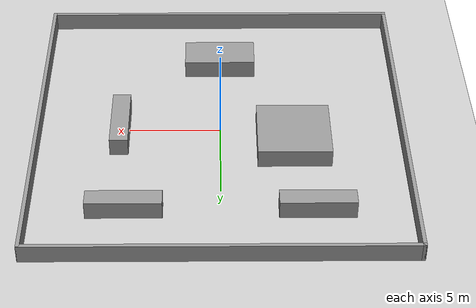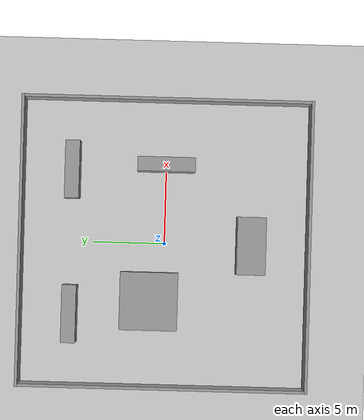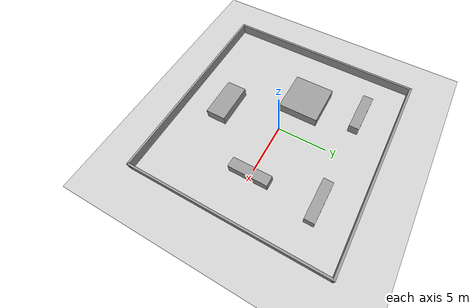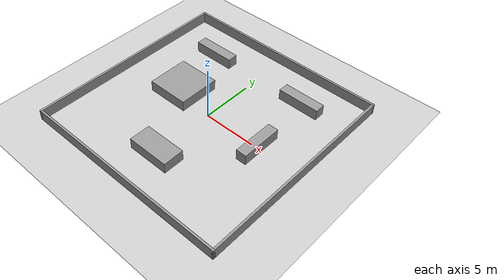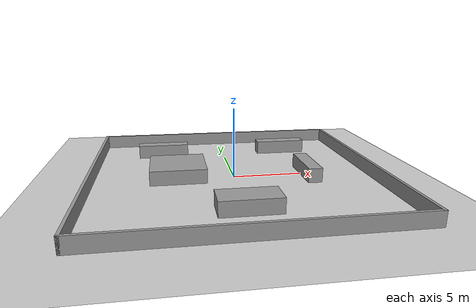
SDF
<?xml version="1.0" ?>
<sdf version="1.3">
  <world name="default">
    <!-- A global light source -->
    <include>
      <uri>model://sun</uri>
    </include>

    <!-- A ground plane -->
    <include>
      <uri>model://ground_plane</uri>
    </include>

<model name='BuildingDefaultName'>

    <link name='Wall_1'>
      <collision name='Wall_1_Collision'>
        <geometry>
          <box>
            <size>20.2 0.2 2</size>
          </box>
        </geometry>
        <pose>10.0 0 0 0 -0 0</pose>
      </collision>
      <visual name='Wall_1_Visual'>
        <pose>10.0 0 0 0 -0 0</pose>
        <geometry>
          <box>
            <size>20.2 0.2 2</size>
          </box>
        </geometry>
        <material>
          <script>
            <uri>file://media/materials/scripts/gazebo.material</uri>
            <name>Gazebo/Grey</name>
          </script>
        </material>
      </visual>
      <velocity_decay>
        <linear>0</linear>
        <angular>0</angular>
      </velocity_decay>
      <pose>-10.0 -10.0 0 0 -0 0</pose>
    </link>
    <link name='Wall_2'>
      <collision name='Wall_2_Collision'>
        <geometry>
          <box>
            <size>20.2 0.2 2</size>
          </box>
        </geometry>
        <pose>10.0 0 0 0 -0 0</pose>
      </collision>
      <visual name='Wall_2_Visual'>
        <pose>10.0 0 0 0 -0 0</pose>
        <geometry>
          <box>
            <size>20.2 0.2 2</size>
          </box>
        </geometry>
        <material>
          <script>
            <uri>file://media/materials/scripts/gazebo.material</uri>
            <name>Gazebo/Grey</name>
          </script>
        </material>
      </visual>
      <velocity_decay>
        <linear>0</linear>
        <angular>0</angular>
      </velocity_decay>
      <pose>-10.0 10.0 0 0 -0 0</pose>
    </link>
    <link name='Wall_3'>
      <collision name='Wall_3_Collision'>
        <geometry>
          <box>
            <size>0.2 20.2 2</size>
          </box>
        </geometry>
        <pose>0.0 10.0 0 0 -0 0</pose>
      </collision>
      <visual name='Wall_3_Visual'>
        <pose>0.0 10.0 0 0 -0 0</pose>
        <geometry>
          <box>
            <size>0.2 20.2 2</size>
          </box>
        </geometry>
        <material>
          <script>
            <uri>file://media/materials/scripts/gazebo.material</uri>
            <name>Gazebo/Grey</name>
          </script>
        </material>
      </visual>
      <velocity_decay>
        <linear>0</linear>
        <angular>0</angular>
      </velocity_decay>
      <pose>-10.0 -10.0 0 0 -0 0</pose>
    </link>
    <link name='Wall_4'>
      <collision name='Wall_4_Collision'>
        <geometry>
          <box>
            <size>0.2 20.2 2</size>
          </box>
        </geometry>
        <pose>0.0 10.0 0 0 -0 0</pose>
      </collision>
      <visual name='Wall_4_Visual'>
        <pose>0.0 10.0 0 0 -0 0</pose>
        <geometry>
          <box>
            <size>0.2 20.2 2</size>
          </box>
        </geometry>
        <material>
          <script>
            <uri>file://media/materials/scripts/gazebo.material</uri>
            <name>Gazebo/Grey</name>
          </script>
        </material>
      </visual>
      <velocity_decay>
        <linear>0</linear>
        <angular>0</angular>
      </velocity_decay>
      <pose>10.0 -10.0 0 0 -0 0</pose>
    </link>
    <link name='Wall_5'>
      <collision name='Wall_5_Collision'>
        <geometry>
          <box>
            <size>4.0 2.0 2</size>
          </box>
        </geometry>
        <pose>2.0 -10.0 0 0 -0 0</pose>
      </collision>
      <visual name='Wall_5_Visual'>
        <pose>2.0 -10.0 0 0 -0 0</pose>
        <geometry>
          <box>
            <size>4.0 2.0 2</size>
          </box>
        </geometry>
        <material>
          <script>
            <uri>file://media/materials/scripts/gazebo.material</uri>
            <name>Gazebo/Grey</name>
          </script>
        </material>
      </visual>
      <velocity_decay>
        <linear>0</linear>
        <angular>0</angular>
      </velocity_decay>
      <pose>-2.0 4.0 0 0 -0 0</pose>
    </link>
    <link name='Wall_6'>
      <collision name='Wall_6_Collision'>
        <geometry>
          <box>
            <size>4.0 1.0 2</size>
          </box>
        </geometry>
        <pose>2.0 -0.5 0 0 -0 0</pose>
      </collision>
      <visual name='Wall_6_Visual'>
        <pose>2.0 -0.5 0 0 -0 0</pose>
        <geometry>
          <box>
            <size>4.0 1.0 2</size>
          </box>
        </geometry>
        <material>
          <script>
            <uri>file://media/materials/scripts/gazebo.material</uri>
            <name>Gazebo/Grey</name>
          </script>
        </material>
      </visual>
      <velocity_decay>
        <linear>0</linear>
        <angular>0</angular>
      </velocity_decay>
      <pose>-7.0 7.0 0 0 -0 0</pose>
    </link>
    <link name='Wall_7'>
      <collision name='Wall_7_Collision'>
        <geometry>
          <box>
            <size>4.0 1.0 2</size>
          </box>
        </geometry>
        <pose>12.0 -0.5 0 0 -0 0</pose>
      </collision>
      <visual name='Wall_7_Visual'>
        <pose>12.0 -0.5 0 0 -0 0</pose>
        <geometry>
          <box>
            <size>4.0 1.0 2</size>
          </box>
        </geometry>
        <material>
          <script>
            <uri>file://media/materials/scripts/gazebo.material</uri>
            <name>Gazebo/Grey</name>
          </script>
        </material>
      </visual>
      <velocity_decay>
        <linear>0</linear>
        <angular>0</angular>
      </velocity_decay>
      <pose>-7.0 7.0 0 0 -0 0</pose>
    </link>
    <link name='Wall_8'>
      <collision name='Wall_8_Collision'>
        <geometry>
          <box>
            <size>4.0 4.0 2</size>
          </box>
        </geometry>
        <pose>3.0 -6.00 0 0 -0 0</pose>
      </collision>
      <visual name='Wall_8_Visual'>
        <pose>3.0 -6.00 0 0 -0 0</pose>
        <geometry>
          <box>
            <size>4.0 4.0 2</size>
          </box>
        </geometry>
        <material>
          <script>
            <uri>file://media/materials/scripts/gazebo.material</uri>
            <name>Gazebo/Grey</name>
          </script>
        </material>
      </visual>
      <velocity_decay>
        <linear>0</linear>
        <angular>0</angular>
      </velocity_decay>
      <pose>-7.0 7.0 0 0 -0 0</pose>
    </link>
    <link name='Wall_9'>
      <collision name='Wall_9_Collision'>
        <geometry>
          <box>
            <size>1.0 4.0 2</size>
          </box>
        </geometry>
        <pose>7.5 -5.0 0 0 -0 0</pose>
      </collision>
      <visual name='Wall_9_Visual'>
        <pose>7.5 -5.0 0 0 -0 0</pose>
        <geometry>
          <box>
            <size>1.0 4.0 2</size>
          </box>
        </geometry>
        <material>
          <script>
            <uri>file://media/materials/scripts/gazebo.material</uri>
            <name>Gazebo/Grey</name>
          </script>
        </material>
      </visual>
      <velocity_decay>
        <linear>0</linear>
        <angular>0</angular>
      </velocity_decay>
      <pose>-2.0 5.0 0 0 -0 0</pose>
    </link>

    <static>1</static>
  </model>

  </world>
</sdf>
